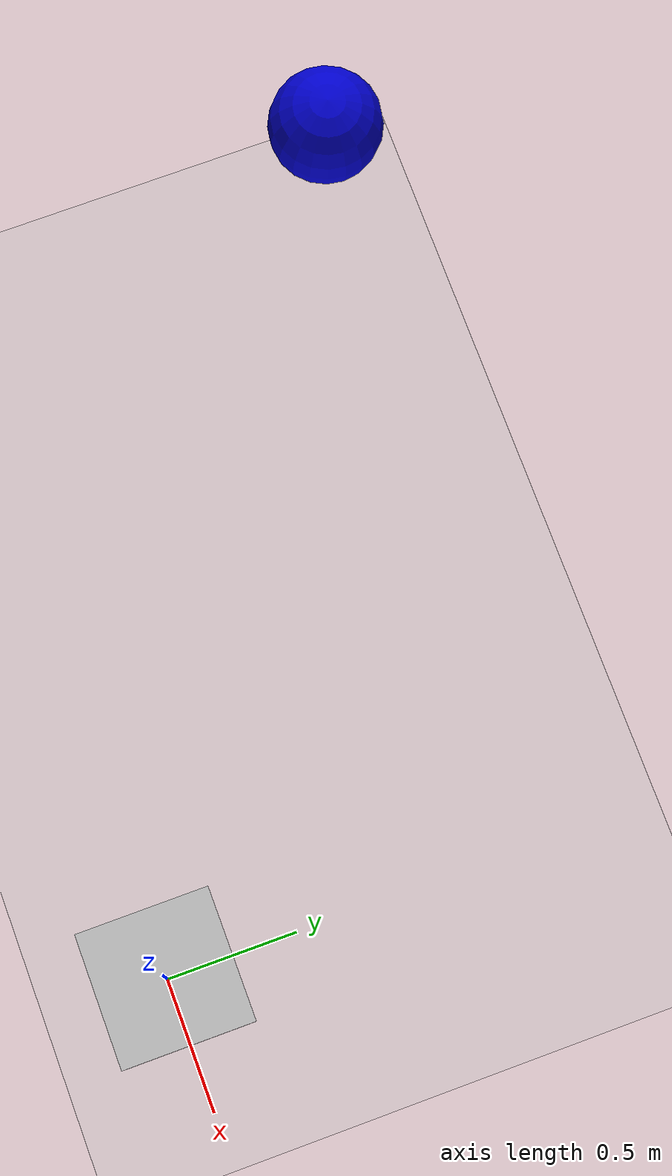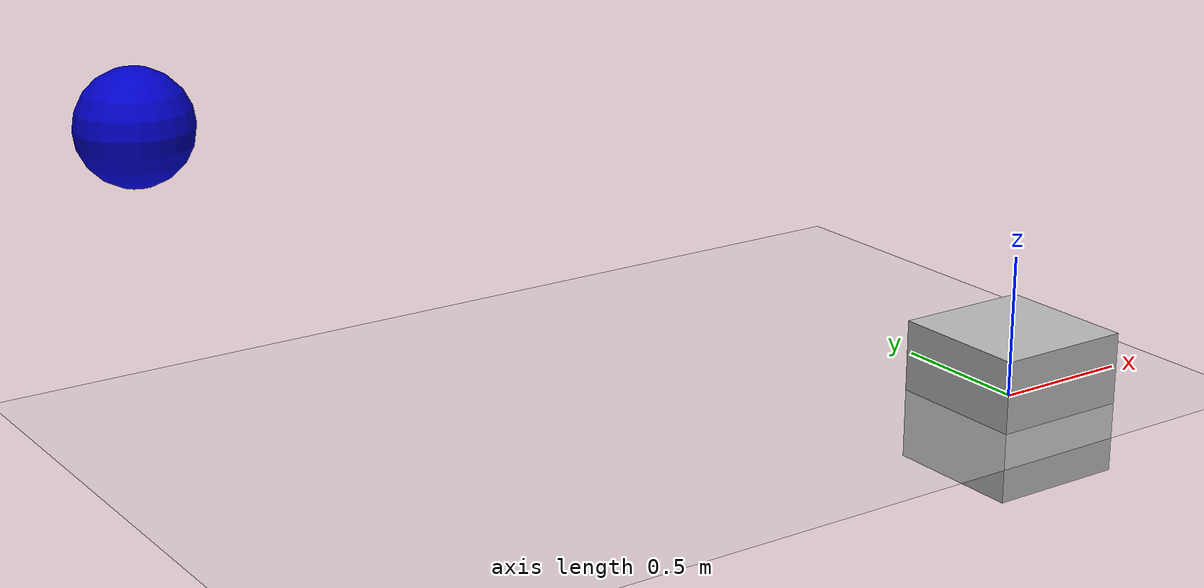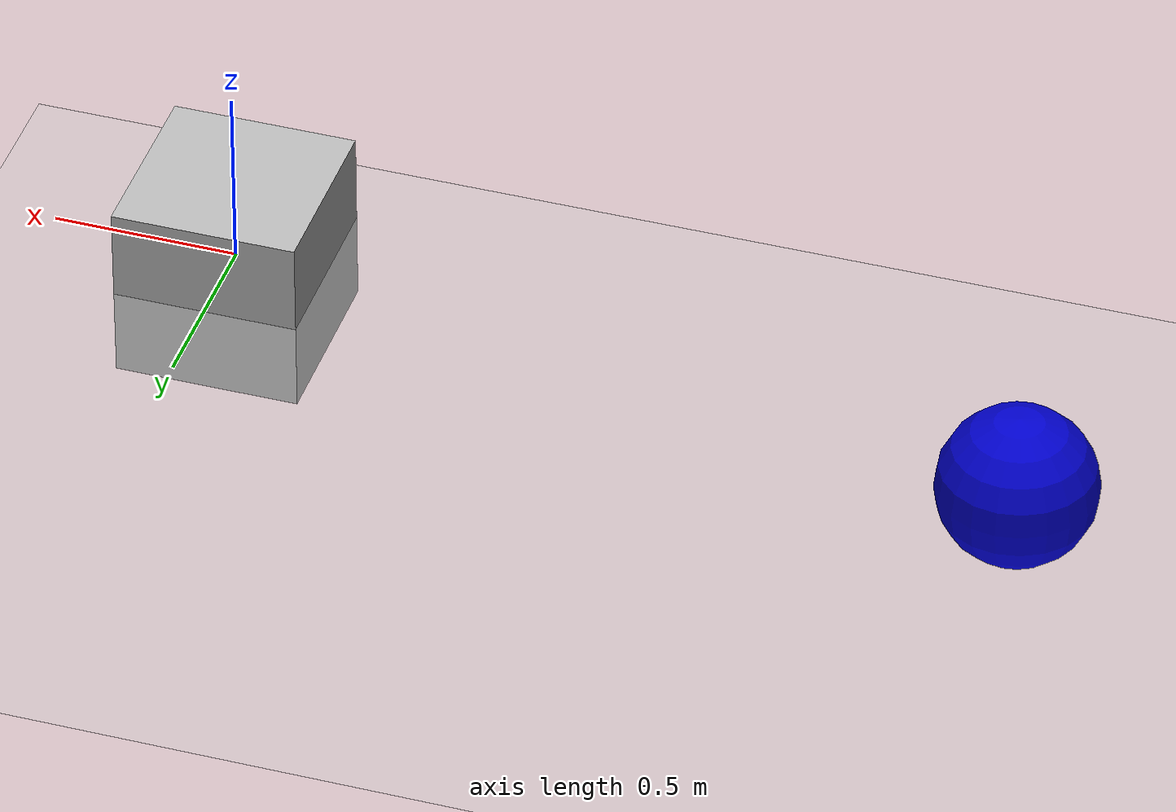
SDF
<?xml version="1.0" ?>
<!--
  Gazebo ROS video plugin demo

    The visual on top of the box is displaying the images coming from a camera.
-->
<sdf version="1.6">
  <world name="default">

    <include>
      <uri>model://sun</uri>
    </include>

    <model name="ground_plane">
      <static>true</static>
      <link name="link">
        <collision name="collision">
          <geometry>
            <plane>
              <normal>0 0 1</normal>
              <size>100 100</size>
            </plane>
          </geometry>
          <surface>
            <friction>
              <ode>
                <mu>100</mu>
                <mu2>50</mu2>
              </ode>
            </friction>
            <bounce>
              <restitution_coefficient>1.0</restitution_coefficient>
              <threshold>0</threshold>
            </bounce>
            <contact>
              <ode>
                <max_vel>10000</max_vel>
                <min_depth>0.001</min_depth>
              </ode>
            </contact>
          </surface>
        </collision>
        <visual name="visual">
          <cast_shadows>false</cast_shadows>
          <geometry>
            <plane>
              <normal>0 0 1</normal>
              <size>100 100</size>
            </plane>
          </geometry>
          <material>
            <script>
              <uri>file://media/materials/scripts/gazebo.material</uri>
              <name>Gazebo/Grey</name>
            </script>
          </material>
        </visual>
      </link>
    </model>

    <model name="camera_model">
      <pose>0 1.5 0.5 0 0 3.14</pose>
      <static>true</static>
      <link name="camera_link">
        <sensor type="camera" name="camera1">
          <update_rate>60</update_rate>
          <visualize>true</visualize>
          <camera name="head">
            <horizontal_fov>1.3962634</horizontal_fov>
            <image>
              <width>640</width>
              <height>480</height>
              <format>R8G8B8</format>
            </image>
            <clip>
              <near>0.02</near>
              <far>300</far>
            </clip>
          </camera>
          <plugin name="camera_controller" filename="libgazebo_ros_camera.so">
          </plugin>
        </sensor>
      </link>
    </model>

    <model name="ball">
      <allow_auto_disable>false</allow_auto_disable>
      <pose>-2.5 1.5 1 0 0 0</pose>
      <static>false</static>
      <link name="link">
        <inertial>
          <mass>0.1</mass>
          <inertia>
            <ixx>0.1</ixx>
            <iyy>0.1</iyy>
            <izz>0.1</izz>
          </inertia>
        </inertial>
        <collision name="collision">
          <geometry>
            <sphere>
              <radius>0.2</radius>
            </sphere>
          </geometry>
          <surface>
            <bounce>
              <restitution_coefficient>1.0</restitution_coefficient>
              <threshold>0</threshold>
            </bounce>
            <contact>
              <ode>
                <max_vel>10000</max_vel>
                <min_depth>0.001</min_depth>
              </ode>
            </contact>
          </surface>
        </collision>
        <visual name="visual">
          <geometry>
            <sphere>
              <radius>0.2</radius>
            </sphere>
          </geometry>
          <material>
            <ambient>0 0 0.8 1</ambient>
            <diffuse>0 0 0.8 1</diffuse>
            <specular>1 1 1 1</specular>
          </material>
        </visual>
      </link>
    </model>

    <model name="box_display">
      <pose>0.0 0.0 0.0 0.0 0.0 0.0</pose>
      <link name="base_link">
        <visual name="visual">
          <geometry>
            <box>
              <size>0.5 0.5 0.5</size>
            </box>
          </geometry>
          <plugin name="display_video_controller" filename="libgazebo_ros_video.so">
            <ros>
              <!-- Remap for image topic to be subscribed -->
              <remapping>~/image_raw:=/camera1/image_raw</remapping>
            </ros>
            <height>120</height>
            <width>160</width>
          </plugin>
        </visual>
        <collision name="collision">
          <geometry>
            <box>
              <size>0.5 0.5 0.5</size>
            </box>
          </geometry>
          <laser_retro>100.0</laser_retro>
        </collision>
      </link>
    </model>

  </world>
</sdf>
